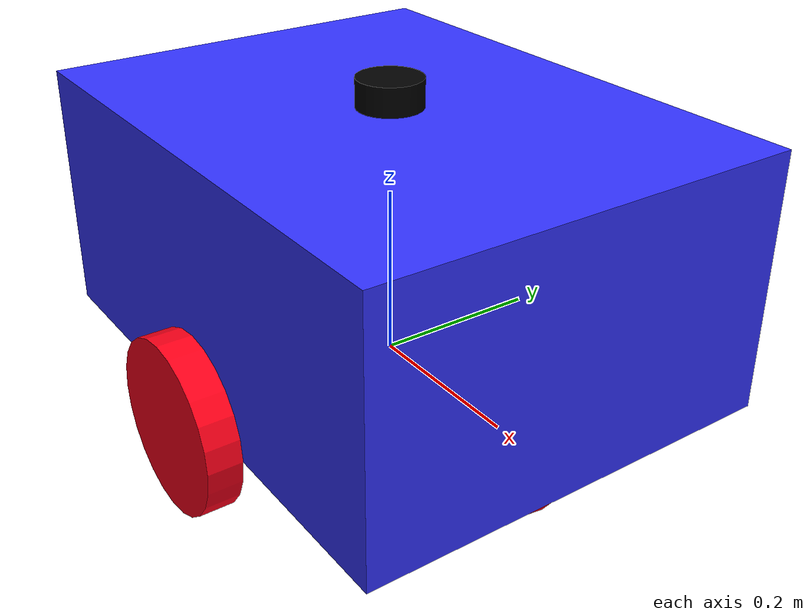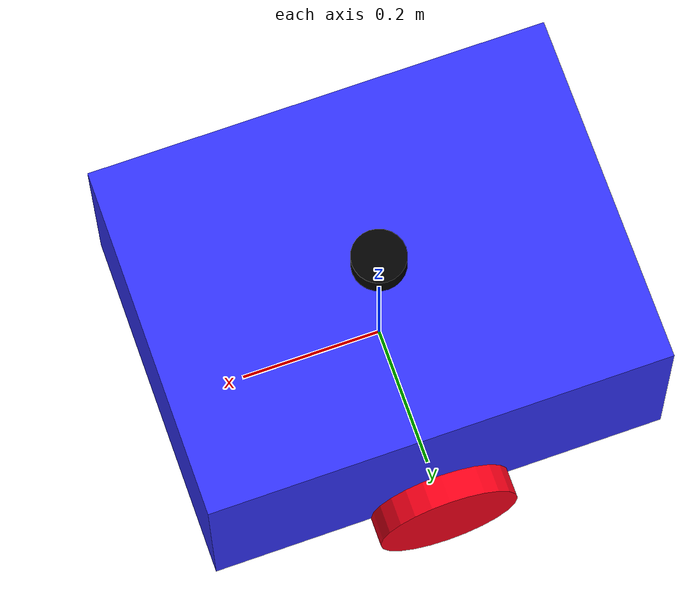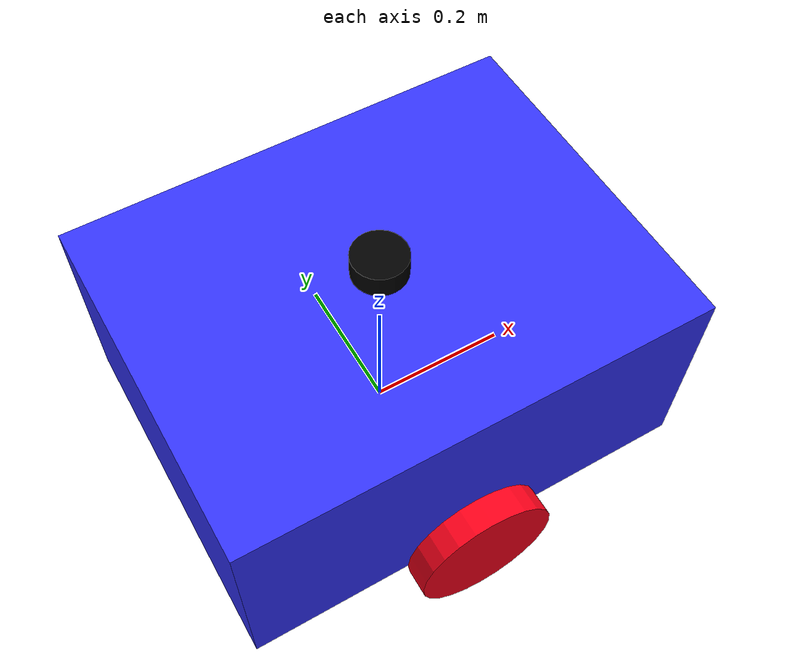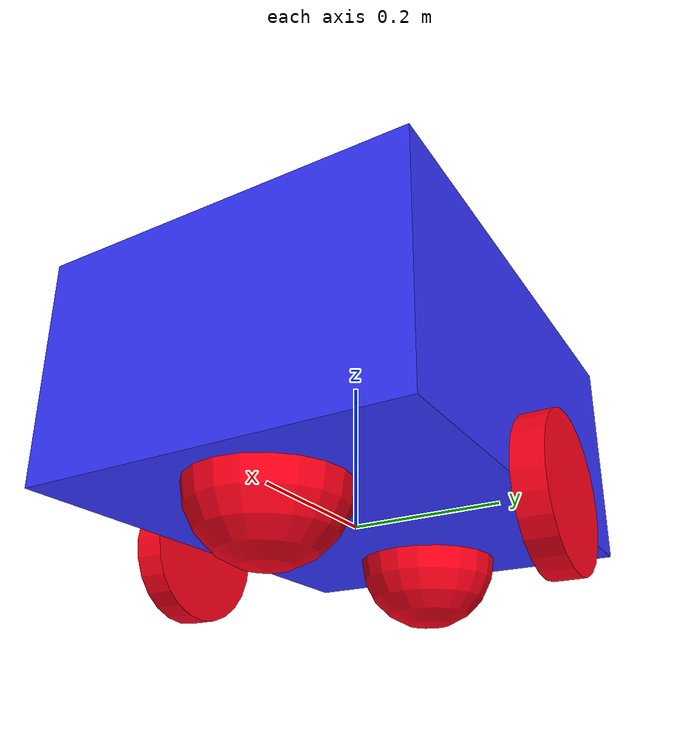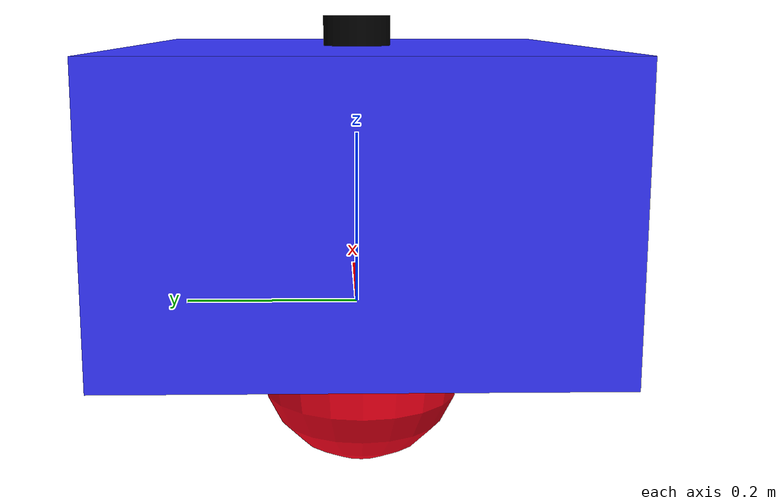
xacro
<?xml version="1.0"?>
<robot xmlns:xacro="http://www.ros.org/wiki/xacro" name="tow_tractor_v2">

    <xacro:arg name="use_gazebo" default="true" />

    <xacro:include filename="tow_tractor_v2_core.xacro" />

    <!-- Gazebo Plugins -->
    <xacro:if value="$(arg use_gazebo)">
        <xacro:include filename="gazebo_control.xacro" />
        <xacro:include filename="gazebo_lidar.xacro" />
        <xacro:include filename="gazebo_imu.xacro" />
    </xacro:if>
</robot>

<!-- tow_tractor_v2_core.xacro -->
<robot xmlns:xacro="http://www.ros.org/wiki/xacro">

    <!-- INCLUDES -->
    <xacro:include filename="material.xacro"/>
    <xacro:include filename="inertial_macros.xacro"/>

    <!-- CHASSIS PROPERTIES -->
    <xacro:property name="chassis_width" value="0.5" />
    <xacro:property name="chassis_length" value="0.65" />
    <xacro:property name="chassis_hight" value="0.3" />
    <xacro:property name="chassis_shift" value="${chassis_length/2}" />
    <xacro:property name="chassis_mass" value="39" />

    <!-- WHEEL PROPERTIES -->
    <xacro:property name="wheel_rad" value="0.1" />
    <xacro:property name="wheel_width" value="0.04"/>
    <xacro:property name="wheel_material" value="orange"/>
    <xacro:property name="wheel_mass" value="2.5"/>

    <!-- STEERING LIMITS PROPERTIES -->
    <xacro:property name="steering_max_angle" value="0.52"/>        <!--rad-->
    <xacro:property name="steering_max_speed" value="1.0"/>         <!--rad/s-->
    <xacro:property name="steering_max_torque" value="10.0"/>

    <!-- BASE LINK -->
    <link name="base_link">
    </link>

    <!-- BASE FOOTPRINT LINK -->
    <link name ="base_footprint">
    </link>

    <joint name="base_footprint_joint" type="fixed">
        <parent link="base_link"/>
        <child link="base_footprint"/>
        <origin xyz="0 0.0 0.0" rpy="0.0 0.0 0.0"/>
    </joint>

    <!-- CHASSIS LINK -->
    <link name="chassis_link">
        <visual>
            <geometry>
                <box size="${chassis_length} ${chassis_width} ${chassis_hight}"/>
            </geometry>
            <material name="blue"/>
            <origin xyz="${chassis_length/2} 0.0 ${chassis_hight/2}" rpy="0.0 0.0 0.0"/>
        </visual>
        <collision>
            <geometry>
                <box size="${chassis_length} ${chassis_width} ${chassis_hight}"/>
            </geometry>
            <origin xyz="${chassis_length/2} 0.0 ${chassis_hight/2}" rpy="0.0 0.0 0.0"/>
        </collision>
        <xacro:inertial_box mass="${chassis_mass}" x="${chassis_length}" y="${chassis_width}" z="${chassis_hight}">
            <origin xyz="${chassis_length/2} 0.0 ${chassis_hight/2}" rpy="0.0 0.0 0.0"/>
        </xacro:inertial_box>
    </link>

    <joint name="chassis_joint" type="fixed">
        <parent link="base_link"/>
        <child link="chassis_link"/>
        <origin xyz="${-chassis_shift} 0.0 0.0" rpy="0.0 0.0 0.0"/>
    </joint>

    <!-- LEFT WHEEL LINK -->
    <link name="left_wheel_link">
        <visual>
            <geometry>
                <cylinder radius="${wheel_rad}" length="${wheel_width}"/>
            </geometry>
            <origin xyz="0.0 ${wheel_width / 2} 0" rpy="${pi/2} 0.0 0.0"/>
            <material name="${wheel_material}"/>
        </visual>
        <collision>
            <geometry>
                <cylinder radius="${wheel_rad}" length="${wheel_width}"/>
            </geometry>
            <origin xyz="0.0 ${wheel_width / 2} 0" rpy="${pi/2} 0.0 0.0"/>
        </collision>
        <xacro:inertial_cylinder mass="${wheel_mass}" radius="${wheel_rad}" length="${wheel_width}">
            <origin xyz="0.0 ${wheel_width / 2} 0" rpy="${pi/2} 0.0 0.0"/>
        </xacro:inertial_cylinder>
    </link>

    <joint name="left_wheel_joint" type="continuous">
        <parent link="chassis_link"/>
        <child link="left_wheel_link"/>
        <origin xyz="${chassis_length / 2} ${chassis_width / 2} 0.0" rpy="0 0.0 0.0"/>
        <axis xyz="0.0 1.0 0.0"/>
    </joint>

    <!-- RIGHT WHEEL LINK -->
    <link name="right_wheel_link">
        <visual>
            <geometry>
                <cylinder radius="${wheel_rad}" length="${wheel_width}"/>
            </geometry>
            <origin xyz="0.0 ${-wheel_width / 2} 0" rpy="${pi/2} 0.0 0.0"/>
            <material name="${wheel_material}"/>
        </visual>
        <collision>
            <geometry>
                <cylinder radius="${wheel_rad}" length="${wheel_width}"/>
            </geometry>
            <origin xyz="0.0 ${-wheel_width / 2} 0" rpy="${pi/2} 0.0 0.0"/>
        </collision>
        <xacro:inertial_cylinder mass="${wheel_mass}" radius="${wheel_rad}" length="${wheel_width}">
            <origin xyz="0.0 ${-wheel_width / 2} 0" rpy="${pi/2} 0.0 0.0"/>
        </xacro:inertial_cylinder>
    </link>

    <joint name="right_wheel_joint" type="continuous">
        <parent link="chassis_link"/>
        <child link="right_wheel_link"/>
        <origin xyz="${chassis_length / 2} ${-chassis_width / 2} 0.0" rpy="0 0.0 0.0"/>
        <axis xyz="0.0 1.0 0.0"/>
    </joint>

    <!-- REAR CASTER WHEEL LINK -->
    <link name="rear_caster_wheel_link">
        <visual>
            <geometry>
                <sphere radius="${wheel_rad}"/>
            </geometry>
            <material name="${wheel_material}"/>
        </visual>
        <collision>
            <geometry>
                <sphere radius="${wheel_rad}"/>
            </geometry>
        </collision>
        <xacro:inertial_sphere mass="${wheel_mass}" radius="${wheel_rad}">
            <origin xyz="0.0 0.0 0.0" rpy="0.0 0.0 0.0"/>
        </xacro:inertial_sphere>
    </link>

    <joint name="rear_caster_wheel_joint" type="fixed">
        <parent link="chassis_link"/>
        <child link="rear_caster_wheel_link"/>
        <origin xyz="${chassis_length / 6} 0.0 0.0" rpy="0.0 0.0 0.0"/>
    </joint>

    <gazebo reference="rear_caster_wheel_link">
        <mu1 value="0.001"/>
        <mu2 value="0.001"/>
    </gazebo>

    <!-- FRONT CASTER WHEEL LINK -->
    <link name="front_caster_wheel_link">
        <visual>
            <geometry>
                <sphere radius="${wheel_rad}"/>
            </geometry>
            <material name="${wheel_material}"/>
        </visual>
        <collision>
            <geometry>
                <sphere radius="${wheel_rad}"/>
            </geometry>
        </collision>
        <xacro:inertial_sphere mass="${wheel_mass}" radius="${wheel_rad}">
            <origin xyz="0.0 0.0 0.0" rpy="0.0 0.0 0.0"/>
        </xacro:inertial_sphere>
    </link>

    <joint name="front_caster_wheel_joint" type="fixed">
        <parent link="chassis_link"/>
        <child link="front_caster_wheel_link"/>
        <origin xyz="${chassis_length * 4 / 5} 0.0 0.0" rpy="0.0 0.0 0.0"/>
    </joint>

    <gazebo reference="front_caster_wheel_link">
        <mu1 value="0.001"/>
        <mu2 value="0.001"/>
    </gazebo>
</robot>

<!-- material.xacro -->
<robot xmlns:xacro="http://www.ros.org/wiki/xacro">

    <material name="white">
        <color rgba="1 1 1 1"/>
    </material>

    <material name="orange">
        <color rgba="1 0. 0.1 1"/>
    </material>

    <material name="blue">
        <color rgba="0.2 0.2 1 1"/>
    </material>

    <material name="black">
        <color rgba="0 0 0 1"/>
    </material>
</robot>

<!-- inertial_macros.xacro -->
<robot xmlns:xacro="http://www.ros.org/wiki/xacro" >

    <!-- Specify some standard inertial calculations https://en.wikipedia.org/wiki/List_of_moments_of_inertia -->
    <!-- These make use of xacro's mathematical functionality -->

    <xacro:macro name="inertial_sphere" params="mass radius *origin">
        <inertial>
            <xacro:insert_block name="origin"/>
            <mass value="${mass}" />
            <inertia ixx="${(2.0/5.0) * mass * (radius*radius)}" ixy="0.0" ixz="0.0"
                    iyy="${(2.0/5.0) * mass * (radius*radius)}" iyz="0.0"
                    izz="${(2.0/5.0) * mass * (radius*radius)}" />
        </inertial>
    </xacro:macro>

    <xacro:macro name="inertial_box" params="mass x y z *origin">
        <inertial>
            <xacro:insert_block name="origin"/>
            <mass value="${mass}" />
            <inertia ixx="${(1.0/12.0) * mass * (y*y+z*z)}" ixy="0.0" ixz="0.0"
                    iyy="${(1.0/12.0) * mass * (x*x+z*z)}" iyz="0.0"
                    izz="${(1.0/12.0) * mass * (x*x+y*y)}" />
        </inertial>
    </xacro:macro>

<xacro:macro name="inertial_cylinder" params="mass length radius *origin">
    <inertial>
        <xacro:insert_block name="origin"/>
        <mass value="${mass}" />
        <inertia ixx="${(1.0/12.0) * mass * (3.0 * radius * radius + length * length)}"
                ixy="0.0" ixz="0.0"
                iyy="${(1.0/12.0) * (mass) * (3.0 * (radius) * (radius) + (length) * (length))}"
                iyz="0.0"
                izz="${(1.0/2.0) * (mass) * (radius) * (radius)}" />
    </inertial>
</xacro:macro>

</robot>

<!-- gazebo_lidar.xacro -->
<robot xmlns:xacro="http://www.ros.org/wiki/xacro">

    <!-- SENSORS -->
    <xacro:property name="lidar_rad" value="0.038"/>
    <xacro:property name="lidar_width" value="0.0335"/>
    <xacro:property name="lidar_material" value="black"/>
    <xacro:property name="lidar_mass" value="0.042"/>

    <!-- LIDAR LINK -->
    <link name="lidar_frame">
        <visual>
            <geometry>
                <cylinder radius="${lidar_rad}" length="${lidar_width}"/>
            </geometry>
            <origin xyz="0.0 0.0 0" rpy="0.0 0.0 0.0"/>
            <material name="${lidar_material}"/>
        </visual>

        <collision>
            <geometry>
                <cylinder radius="${lidar_rad}" length="${lidar_width}"/>
            </geometry>
            <origin xyz="0.0 0.0 ${chassis_hight + lidar_width / 2}" rpy="0.0 0.0 0.0"/>
        </collision>

        <xacro:inertial_cylinder mass="${lidar_mass}" radius="${lidar_rad}" length="${lidar_width}">
            <origin xyz="0.0 0.0 0.0" rpy="0.0 0.0 0.0"/>
        </xacro:inertial_cylinder>
    </link>

    <joint name="lidar_joint" type="fixed">
        <parent link="base_link"/>
        <child link="lidar_frame"/>
        <origin xyz="0.0 0.0 ${chassis_hight + lidar_width / 2}" rpy="0.0 0.0 0.0"/>
    </joint>

    <gazebo reference="lidar_frame">
        <sensor name='lidar_frame' type='gpu_lidar'>
            <gz_frame_id>lidar_frame</gz_frame_id>
            <always_on>true</always_on>
            <visualize>true</visualize>
            <pose relative_to='lidar_frame'>0 0 0 0 0 0</pose>
            <topic>scan</topic>
            <update_rate>10</update_rate>
            <lidar>
                <scan>
                    <horizontal>
                        <samples>640</samples>
                        <resolution>1</resolution>
                        <min_angle>-3.14</min_angle>
                        <max_angle>3.14</max_angle>
                    </horizontal>
                </scan>
                <range>
                    <min>0.08</min>
                    <max>12.0</max>
                    <resolution>0.05</resolution>
                </range>
            </lidar>

            <plugin
                filename="gz-sim-sensors-system"
                name="gz::sim::systems::Sensors">
                <render_engine>ogre2</render_engine>
            </plugin>
        </sensor>
    </gazebo>

</robot>
